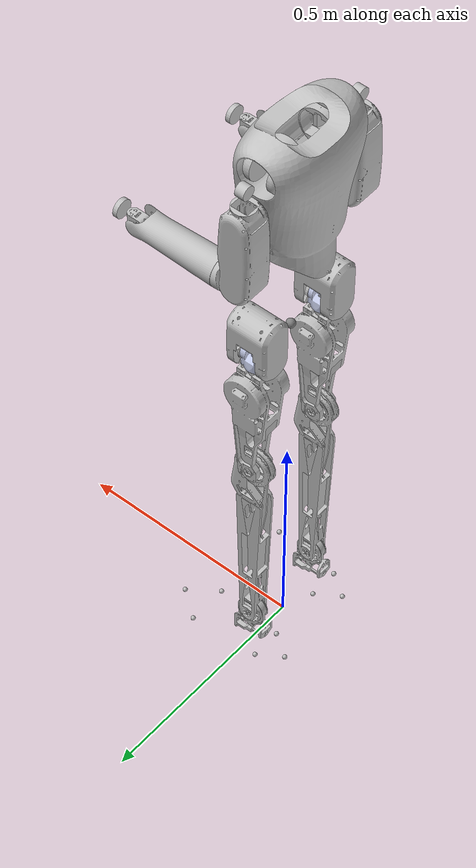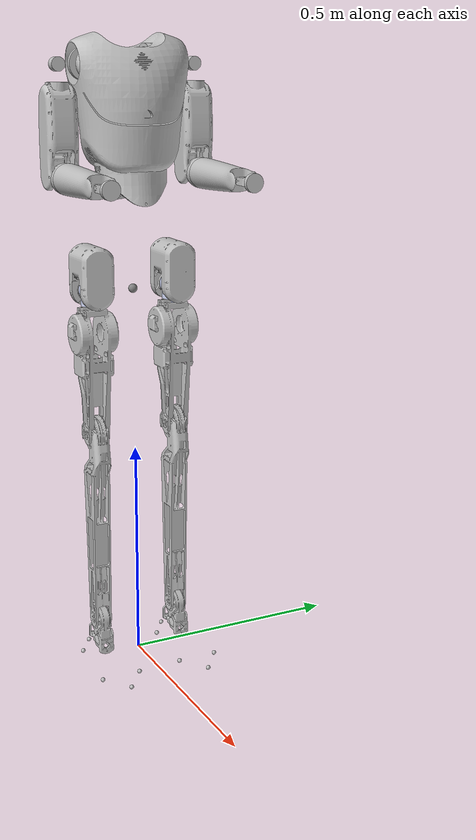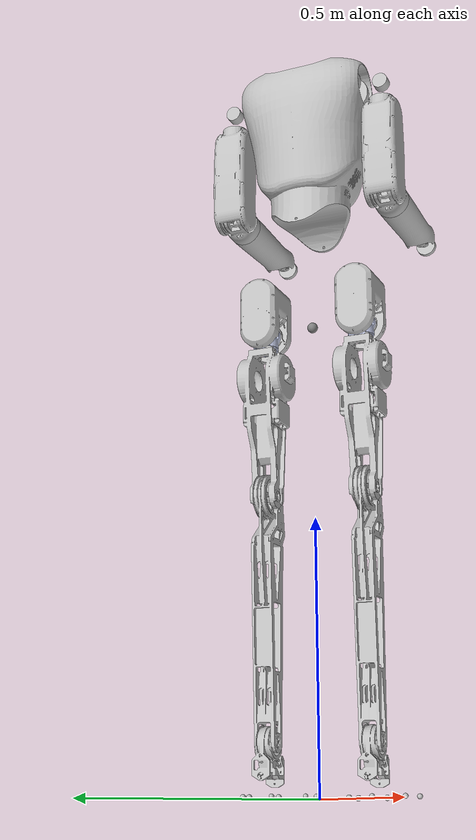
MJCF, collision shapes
<mujoco model="x3">
  <compiler angle="radian" meshdir="./meshes/"/>
  <statistic meansize="0.177939" extent="1.9618" center="0.0465088 1.93584e-06 -0.21519"/>
  <default>
    <joint damping="0.1" armature="0.01" frictionloss="0.1"/>
  </default>
  <asset>
    <texture type="skybox" builtin="gradient" width="128" height="128" rgb1="0.4 0.6 0.8" rgb2="0 0 0"/>
    <texture name="plane" type="2d" builtin="checker" rgb1="0.2 0.2 0.2" rgb2="0.3 0.3 0.3" width="512"
              height="512"/>
    <material name="plane" reflectance="0.0" texture="plane" texrepeat="1 1" texuniform="true"/>
    <mesh name="pelvis" file="pelvis.STL"/>
    <mesh name="left_hip_pitch_link" file="left_hip_pitch_link.STL"/>
    <mesh name="left_hip_roll_link" file="left_hip_roll_link.STL"/>
    <mesh name="left_hip_yaw_link" file="left_hip_yaw_link.STL"/>
    <mesh name="left_knee_link" file="left_knee_link.STL"/>
    <mesh name="left_ankle_pitch_link" file="left_ankle_pitch_link.STL"/>
    <mesh name="left_ankle_roll_link" file="left_ankle_roll_link.STL"/>
    <mesh name="right_hip_pitch_link" file="right_hip_pitch_link.STL"/>
    <mesh name="right_hip_roll_link" file="right_hip_roll_link.STL"/>
    <mesh name="right_hip_yaw_link" file="right_hip_yaw_link.STL"/>
    <mesh name="right_knee_link" file="right_knee_link.STL"/>
    <mesh name="right_ankle_pitch_link" file="right_ankle_pitch_link.STL"/>
    <mesh name="right_ankle_roll_link" file="right_ankle_roll_link.STL"/>
    <mesh name="waist_roll_link" file="waist_roll_link.STL"/>
    <mesh name="torso_link" file="torso_link.STL"/>
    <mesh name="left_shoulder_pitch_link" file="left_shoulder_pitch_link.STL"/>
    <mesh name="left_shoulder_roll_link" file="left_shoulder_roll_link.STL"/>
    <mesh name="left_shoulder_yaw_link" file="left_shoulder_yaw_link.STL"/>
    <mesh name="left_elbow_link" file="left_elbow_link.STL"/>
    <mesh name="left_wrist_roll_link" file="left_wrist_roll_link.STL"/>
    <mesh name="left_wrist_pitch_link" file="left_wrist_pitch_link.STL"/>
    <mesh name="left_wrist_yaw_link" file="left_wrist_yaw_link.STL"/>
    <mesh name="right_shoulder_pitch_link" file="right_shoulder_pitch_link.STL"/>
    <mesh name="right_shoulder_roll_link" file="right_shoulder_roll_link.STL"/>
    <mesh name="right_shoulder_yaw_link" file="right_shoulder_yaw_link.STL"/>
    <mesh name="right_elbow_link" file="right_elbow_link.STL"/>
    <mesh name="right_wrist_roll_link" file="right_wrist_roll_link.STL"/>
    <mesh name="right_wrist_pitch_link" file="right_wrist_pitch_link.STL"/>
    <mesh name="right_wrist_yaw_link" file="right_wrist_yaw_link.STL"/>
    <mesh name="imu_link" file="imu_link.STL"/>
  </asset>

  <worldbody>
    <light mode="trackcom" pos="0 0 5" dir="0 0 -1"/>
    <body name="pelvis" pos="0 0 0.918">
      <inertial pos="-1.00906e-05 1.11901e-05 0.013828" quat="0.688319 0.000592926 -7.84321e-05 0.725408" mass="3.55" diaginertia="0.0100712 0.0100075 0.00574685"/>
      <joint name="pelvis" type="free" limited="false" actuatorfrclimited="false"/>
      <!-- 关键修复3：删除重复的pelvis geom，减少计算开销 -->
      <geom  type="mesh" contype="0" conaffinity="0" group="1" density="0" rgba="0.75294 0.75294 0.75294 1" mesh="pelvis"/>
      <site name="imu_in_pelvis" size="0.01" pos="0 0 -0.045" quat="0.999992 0 -0.00412001 0"/>
      <geom type="mesh" contype="0" conaffinity="0" group="1" density="0" rgba="0.75294 0.75294 0.75294 1" pos="0 0 -0.045" quat="0.999992 0 -0.00412001 0" mesh="imu_link"/>

      <body name="left_hip_pitch_link" pos="0 0.0495 0">
        <inertial pos="0 0.0479607 0.00018619" quat="0.707096 0.00398933 -0.00398933 0.707096" mass="1.3" diaginertia="0.00327345 0.00268395 0.00219125"/>
        <joint name="left_hip_pitch_joint" pos="0 0 0" axis="0 1 0" range="-2.3562 2.3562" actuatorfrcrange="-75 75"/>
        <geom type="mesh" contype="0" conaffinity="0" group="1" density="0" rgba="0.75294 0.75294 0.75294 1" mesh="left_hip_pitch_link"/>
        <geom type="mesh" rgba="0.75294 0.75294 0.75294 1" mesh="left_hip_pitch_link"/>
        <body name="left_hip_roll_link" pos="0 0.048 -0.044">
          <inertial pos="0.00060275 0 -0.00813707" quat="0 0.591079 0 0.806614" mass="0.2" diaginertia="8.48757e-05 8.271e-05 7.40143e-05"/>
          <joint name="left_hip_roll_joint" pos="0 0 0" axis="1 0 0" range="-0.5236 1.6581" actuatorfrcrange="-40.2 40.2"/>
          <geom type="mesh" contype="0" conaffinity="0" group="1" density="0" rgba="0.79216 0.81961 0.93333 1" mesh="left_hip_roll_link"/>
          <geom type="mesh" rgba="0.79216 0.81961 0.93333 1" mesh="left_hip_roll_link"/>
          <body name="left_hip_yaw_link">
            <inertial pos="0.00076396 2.351e-05 -0.155417" quat="0.999982 0.00015287 0.00520456 -0.00309238" mass="1.9" diaginertia="0.0179598 0.0178101 0.00200581"/>
            <joint name="left_hip_yaw_joint" pos="0 0 0" axis="0 0 1" range="-1.9199 3.1416" actuatorfrcrange="-40.2 40.2"/>
            <geom type="mesh" contype="0" conaffinity="0" group="1" density="0" rgba="0.75294 0.75294 0.75294 1" mesh="left_hip_yaw_link"/>
            <geom type="mesh" rgba="0.75294 0.75294 0.75294 1" mesh="left_hip_yaw_link"/>
            <body name="left_knee_link" pos="0 0 -0.326">
              <inertial pos="0.00294272 0 -0.163752" quat="0.707079 -0.00627646 -0.00627646 0.707079" mass="0.8" diaginertia="0.0178928 0.0177353 0.000401948"/>
              <joint name="left_knee_joint" pos="0 0 0" axis="0 1 0" range="0 2.3562" actuatorfrcrange="-57.2 57.2"/>
              <geom type="mesh" contype="0" conaffinity="0" group="1" density="0" rgba="0.75294 0.75294 0.75294 1" mesh="left_knee_link"/>
              <geom type="mesh" rgba="0.75294 0.75294 0.75294 1" mesh="left_knee_link"/>
              <body name="left_ankle_pitch_link" pos="0 0 -0.45">
                <inertial pos="0.00286091 -1.418e-05 -0.0234174" quat="0.699576 0.101443 0.101254 0.700036" mass="0.2" diaginertia="0.00020422 0.000149639 8.67809e-05"/>
                <joint name="left_ankle_pitch_joint" pos="0 0 0" axis="0 1 0" range="-1.0472 1.0472" actuatorfrcrange="-39.6 39.6"/>
                <geom type="mesh" contype="0" conaffinity="0" group="1" density="0" rgba="0.75294 0.75294 0.75294 1" mesh="left_ankle_pitch_link"/>
                <geom type="mesh" rgba="0.75294 0.75294 0.75294 1" mesh="left_ankle_pitch_link"/>
                <body name="left_ankle_roll_link" pos="0 0 -0.058">
                  <inertial pos="0.0449445 4.33e-06 -0.0241154" quat="0.000465871 0.700268 0.00039967 0.713879" mass="0.6" diaginertia="0.00401447 0.00370022 0.000432073"/>
                  <joint name="left_ankle_roll_joint" pos="0 0 0" axis="1 0 0" range="-0.5236 0.5236" actuatorfrcrange="-16 16"/>
                  <geom type="mesh" contype="0" conaffinity="0" group="1" density="0" rgba="0.75294 0.75294 0.75294 1" mesh="left_ankle_roll_link"/>
                  <geom  name="left_foot1_collision" size="0.005" pos="-0.085 0 -0.036" rgba="0.75294 0.75294 0.75294 1"/>
                  <geom  name="left_foot2_collision" size="0.005" pos="-0.035 0.034 -0.036" rgba="0.75294 0.75294 0.75294 1"/>
                  <geom  name="left_foot3_collision" size="0.005" pos="-0.035 -0.034 -0.036" rgba="0.75294 0.75294 0.75294 1"/>
                  <geom  name="left_foot4_collision" size="0.005" pos="0.12 0.045 -0.036" rgba="0.75294 0.75294 0.75294 1"/>
                  <geom  name="left_foot5_collision" size="0.005" pos="0.12 -0.045 -0.036" rgba="0.75294 0.75294 0.75294 1"/>
                  <geom  name="left_foot6_collision" size="0.005" pos="0.18 0 -0.036" rgba="0.75294 0.75294 0.75294 1"/>
                </body>
              </body>
            </body>
          </body>
        </body>
      </body>
      <body name="right_hip_pitch_link" pos="0 -0.0495 0" quat="0.999992 0 -0.00411999 0">
        <inertial pos="0 -0.0479607 0.00018619" quat="0.707096 -0.00398933 0.00398933 0.707096" mass="1.3" diaginertia="0.00327345 0.00268395 0.00219125"/>
        <joint name="right_hip_pitch_joint" pos="0 0 0" axis="0 1 0" range="-2.3562 2.3562" actuatorfrcrange="-75 75"/>
        <geom type="mesh" contype="0" conaffinity="0" group="1" density="0" rgba="0.75294 0.75294 0.75294 1" mesh="right_hip_pitch_link"/>
        <geom type="mesh" rgba="0.75294 0.75294 0.75294 1" mesh="right_hip_pitch_link"/>
        <body name="right_hip_roll_link" pos="0 -0.048 -0.044">
          <inertial pos="-0.00060275 0 -0.00813707" quat="0 0.806614 0 0.591079" mass="0.2" diaginertia="8.48757e-05 8.271e-05 7.40143e-05"/>
          <joint name="right_hip_roll_joint" pos="0 0 0" axis="1 0 0" range="-1.6581 0.5236" actuatorfrcrange="-40.2 40.2"/>
          <geom type="mesh" contype="0" conaffinity="0" group="1" density="0" rgba="0.79216 0.81961 0.93333 1" mesh="right_hip_roll_link"/>
          <geom type="mesh" rgba="0.79216 0.81961 0.93333 1" mesh="right_hip_roll_link"/>
          <body name="right_hip_yaw_link">
            <inertial pos="0.00083043 -2.303e-05 -0.155417" quat="0.999989 -0.000168166 0.00472739 -9.90978e-05" mass="1.9" diaginertia="0.0179595 0.0178099 0.00200591"/>
            <joint name="right_hip_yaw_joint" pos="0 0 0" axis="0 0 1" range="-3.1416 1.9199" actuatorfrcrange="-40.2 40.2"/>
            <geom type="mesh" contype="0" conaffinity="0" group="1" density="0" rgba="0.75294 0.75294 0.75294 1" mesh="right_hip_yaw_link"/>
            <geom type="mesh" rgba="0.75294 0.75294 0.75294 1" mesh="right_hip_yaw_link"/>
            <body name="right_knee_link" pos="0 0 -0.326">
              <inertial pos="0.0029419 6.85e-06 -0.164013" quat="0.706971 -0.00632247 -0.00625627 0.707187" mass="0.8" diaginertia="0.0178869 0.0177291 0.000401547"/>
              <joint name="right_knee_joint" pos="0 0 0" axis="0 1 0" range="0 2.3562" actuatorfrcrange="-57.2 57.2"/>
              <geom type="mesh" contype="0" conaffinity="0" group="1" density="0" rgba="0.75294 0.75294 0.75294 1" mesh="right_knee_link"/>
              <geom type="mesh" rgba="0.75294 0.75294 0.75294 1" mesh="right_knee_link"/>
              <body name="right_ankle_pitch_link" pos="0 0 -0.45">
                <inertial pos="0.00286091 -1.418e-05 -0.0234174" quat="0.699576 0.101443 0.101254 0.700036" mass="0.2" diaginertia="0.00020422 0.000149639 8.67809e-05"/>
                <joint name="right_ankle_pitch_joint" pos="0 0 0" axis="0 1 0" range="-1.0472 1.0472" actuatorfrcrange="-39.6 39.6"/>
                <geom type="mesh" contype="0" conaffinity="0" group="1" density="0" rgba="0.75294 0.75294 0.75294 1" mesh="right_ankle_pitch_link"/>
                <geom type="mesh" rgba="0.75294 0.75294 0.75294 1" mesh="right_ankle_pitch_link"/>
                <body name="right_ankle_roll_link" pos="0 0 -0.058">
                  <inertial pos="0.0449445 4.33e-06 -0.0241154" quat="0.000465871 0.700268 0.00039967 0.713879" mass="0.6" diaginertia="0.00401447 0.00370022 0.000432073"/>
                  <joint name="right_ankle_roll_joint" pos="0 0 0" axis="1 0 0" range="-0.5236 0.5236" actuatorfrcrange="-16 16"/>
                  <geom type="mesh" contype="0" conaffinity="0" group="1" density="0" rgba="0.75294 0.75294 0.75294 1" mesh="right_ankle_roll_link"/>
                  <geom name="right_foot1_collision" size="0.005" pos="-0.085 0 -0.036" rgba="0.75294 0.75294 0.75294 1"/>
                  <geom name="right_foot2_collision" size="0.005" pos="-0.035 0.034 -0.036" rgba="0.75294 0.75294 0.75294 1"/>
                  <geom name="right_foot3_collision" size="0.005" pos="-0.035 -0.034 -0.036" rgba="0.75294 0.75294 0.75294 1"/>
                  <geom name="right_foot4_collision" size="0.005" pos="0.12 0.045 -0.036" rgba="0.75294 0.75294 0.75294 1"/>
                  <geom name="right_foot5_collision" size="0.005" pos="0.12 -0.045 -0.036" rgba="0.75294 0.75294 0.75294 1"/>
                  <geom name="right_foot6_collision" size="0.005" pos="0.18 0 -0.036" rgba="0.75294 0.75294 0.75294 1"/>
                </body>
              </body>
            </body>
          </body>
        </body>
      </body>
      <body name="waist_roll_link" pos="0 0 0.1505">
        <inertial pos="-0.00060275 0 0.00813707" quat="0 0.592137 0 0.805837" mass="0.2" diaginertia="8.49667e-05 8.271e-05 7.40233e-05"/>
        <joint name="waist_roll_joint" pos="0 0 0" axis="1 0 0" range="-0.3491 0.3491" actuatorfrcrange="-40.2 40.2"/>
        <geom type="mesh" contype="0" conaffinity="0" group="1" density="0" rgba="0.79216 0.81961 0.93333 1" mesh="waist_roll_link"/>
        <body name="torso_link">
          <inertial pos="-0.00441482 -4.305e-05 0.155364" quat="0.704735 0.0326523 0.0328926 0.707955" mass="4.2" diaginertia="0.0300747 0.0285065 0.00964504"/>
          <joint name="waist_yaw_joint" pos="0 0 0" axis="0 0 1" range="-1.8326 1.8326" actuatorfrcrange="-40.2 40.2"/>
          <geom type="mesh" contype="0" conaffinity="0" group="1" density="0" rgba="0.75294 0.75294 0.75294 1" mesh="torso_link"/>
          <geom type="mesh" rgba="0.75294 0.75294 0.75294 1" mesh="torso_link"/>
          <body name="left_shoulder_pitch_link" pos="-0.015 0.0535 0.2885">
            <inertial pos="0 0.0432043 -5.008e-05" quat="0.703452 0.710743 0 0" mass="1" diaginertia="0.001679 0.00162637 0.0010377"/>
            <joint name="left_shoulder_pitch_joint" pos="0 0 0" axis="0 1 0" range="-3.1416 1.5708" actuatorfrcrange="-50 50"/>
            <geom type="mesh" contype="0" conaffinity="0" group="1" density="0" rgba="0.75294 0.75294 0.75294 1" mesh="left_shoulder_pitch_link"/>
            <geom type="mesh" rgba="0.75294 0.75294 0.75294 1" mesh="left_shoulder_pitch_link"/>
            <body name="left_shoulder_roll_link" pos="0 0.10405 0">
              <inertial pos="0 0 -0.00344765" quat="0 0.707107 0 0.707107" mass="0.2" diaginertia="6.723e-05 5.419e-05 5.033e-05"/>
              <joint name="left_shoulder_roll_joint" pos="0 0 0" axis="1 0 0" range="0 3.0543" actuatorfrcrange="-22.6 22.6"/>
              <geom type="mesh" contype="0" conaffinity="0" group="1" density="0" rgba="0.75294 0.75294 0.75294 1" mesh="left_shoulder_roll_link"/>
              <geom type="mesh" rgba="0.75294 0.75294 0.75294 1" mesh="left_shoulder_roll_link"/>
              <body name="left_shoulder_yaw_link">
                <inertial pos="-0.00163308 3.152e-05 -0.147711" quat="0.712005 -0.00525884 -0.0132953 0.702029" mass="1.8" diaginertia="0.00927938 0.00910639 0.00117262"/>
                <joint name="left_shoulder_yaw_joint" pos="0 0 0" axis="0 0 1" range="-2.0071 2.0071" actuatorfrcrange="-22.6 22.6"/>
                <geom type="mesh" contype="0" conaffinity="0" group="1" density="0" rgba="0.75294 0.75294 0.75294 1" mesh="left_shoulder_yaw_link"/>
                <geom type="mesh" rgba="0.75294 0.75294 0.75294 1" mesh="left_shoulder_yaw_link"/>
                <body name="left_elbow_link" pos="0 0 -0.234">
                  <inertial pos="0.00672647 0.00015498 0" quat="0.999115 0 0 0.042057" mass="0.2" diaginertia="6.79557e-05 6.00743e-05 5.928e-05"/>
                  <joint name="left_elbow_joint" pos="0 0 0" axis="0 1 0" range="-0.4363 1.5708" actuatorfrcrange="-18.8 18.8"/>
                  <geom type="mesh" contype="0" conaffinity="0" group="1" density="0" rgba="0.75294 0.75294 0.75294 1" mesh="left_elbow_link"/>
                  <geom type="mesh" rgba="0.75294 0.75294 0.75294 1" mesh="left_elbow_link"/>
                  <body name="left_wrist_roll_link">
                    <inertial pos="0.103161 -0.00013771 -3.645e-05" quat="0.498466 0.498881 0.501814 0.500831" mass="0.8" diaginertia="0.00170313 0.00164865 0.000204195"/>
                    <joint name="left_wrist_roll_joint" pos="0 0 0" axis="1 0 0" range="-2.0071 2.0071" actuatorfrcrange="-18.8 18.8"/>
                    <geom type="mesh" contype="0" conaffinity="0" group="1" density="0" rgba="0.75294 0.75294 0.75294 1" mesh="left_wrist_roll_link"/>
                    <geom type="mesh" rgba="0.75294 0.75294 0.75294 1" mesh="left_wrist_roll_link"/>
                    <body name="left_wrist_pitch_link" pos="0.235 0 0">
                      <inertial pos="0 0 0" quat="0.707107 0.707107 0 0" mass="0.1" diaginertia="4.138e-05 4.138e-05 1.104e-05"/>
                      <joint name="left_wrist_pitch_joint" pos="0 0 0" axis="0 1 0" range="-0.6981 0.6981" actuatorfrcrange="-2.8 2.8"/>
                      <geom type="mesh" contype="0" conaffinity="0" group="1" density="0" rgba="0.75294 0.75294 0.75294 1" mesh="left_wrist_pitch_link"/>
                      <geom type="mesh" rgba="0.75294 0.75294 0.75294 1" mesh="left_wrist_pitch_link"/>
                      <body name="left_wrist_yaw_link" pos="0.0215 0 0">
                        <inertial pos="0.0147262 0 -0.00097059" quat="0 0.859971 0 0.510344" mass="0.1" diaginertia="3.36436e-05 3.303e-05 2.77464e-05"/>
                        <joint name="left_wrist_yaw_joint" pos="0 0 0" axis="0 0 1" range="-0.8727 0.8727" actuatorfrcrange="-3.4 3.4"/>
                        <geom type="mesh" contype="0" conaffinity="0" group="1" density="0" rgba="0.75294 0.75294 0.75294 1" mesh="left_wrist_yaw_link"/>
                        <geom size="0.02 0.005" pos="0.028 0 0" quat="0.707105 0 0.707108 0" type="cylinder" rgba="0.75294 0.75294 0.75294 1"/>
                      </body>
                    </body>
                  </body>
                </body>
              </body>
            </body>
          </body>
          <body name="right_shoulder_pitch_link" pos="-0.015 -0.0535 0.2885">
            <inertial pos="0 -0.0426543 -5.008e-05" quat="0.710743 0.703452 0 0" mass="1" diaginertia="0.001679 0.00162637 0.0010377"/>
            <joint name="right_shoulder_pitch_joint" pos="0 0 0" axis="0 1 0" range="-3.1416 1.5708" actuatorfrcrange="-50 50"/>
            <geom type="mesh" contype="0" conaffinity="0" group="1" density="0" rgba="0.75294 0.75294 0.75294 1" mesh="right_shoulder_pitch_link"/>
            <geom type="mesh" rgba="0.75294 0.75294 0.75294 1" mesh="right_shoulder_pitch_link"/>
            <body name="right_shoulder_roll_link" pos="0 -0.1035 0">
              <inertial pos="-0.00015498 0 -0.00672647" quat="0.520586 0.520586 -0.478529 0.478529" mass="0.2" diaginertia="6.79557e-05 6.00743e-05 5.928e-05"/>
              <joint name="right_shoulder_roll_joint" pos="0 0 0" axis="1 0 0" range="-3.0543 0" actuatorfrcrange="-22.6 22.6"/>
              <geom type="mesh" contype="0" conaffinity="0" group="1" density="0" rgba="0.75294 0.75294 0.75294 1" mesh="right_shoulder_roll_link"/>
              <geom type="mesh" rgba="0.75294 0.75294 0.75294 1" mesh="right_shoulder_roll_link"/>
              <body name="right_shoulder_yaw_link">
                <inertial pos="-0.00163308 3.152e-05 -0.147711" quat="0.712005 -0.00525884 -0.0132953 0.702029" mass="1.8" diaginertia="0.00927938 0.00910639 0.00117262"/>
                <joint name="right_shoulder_yaw_joint" pos="0 0 0" axis="0 0 1" range="-2.0071 2.0071" actuatorfrcrange="-22.6 22.6"/>
                <geom type="mesh" contype="0" conaffinity="0" group="1" density="0" rgba="0.75294 0.75294 0.75294 1" mesh="right_shoulder_yaw_link"/>
                <geom type="mesh" rgba="0.75294 0.75294 0.75294 1" mesh="right_shoulder_yaw_link"/>
                <body name="right_elbow_link" pos="0 0 -0.234">
                  <inertial pos="0.00672647 0.00015498 0" quat="0.999115 0 0 0.042057" mass="0.2" diaginertia="6.79557e-05 6.00743e-05 5.928e-05"/>
                  <joint name="right_elbow_joint" pos="0 0 0" axis="0 1 0" range="-0.4363 1.5708" actuatorfrcrange="-18.8 18.8"/>
                  <geom type="mesh" contype="0" conaffinity="0" group="1" density="0" rgba="0.75294 0.75294 0.75294 1" mesh="right_elbow_link"/>
                  <geom type="mesh" rgba="0.75294 0.75294 0.75294 1" mesh="right_elbow_link"/>
                  <body name="right_wrist_roll_link">
                    <inertial pos="0.103161 -0.00013771 -3.645e-05" quat="0.498466 0.498881 0.501814 0.500831" mass="0.8" diaginertia="0.00170313 0.00164865 0.000204195"/>
                    <joint name="right_wrist_roll_joint" pos="0 0 0" axis="1 0 0" range="-2.0071 2.0071" actuatorfrcrange="-18.8 18.8"/>
                    <geom type="mesh" contype="0" conaffinity="0" group="1" density="0" rgba="0.75294 0.75294 0.75294 1" mesh="right_wrist_roll_link"/>
                    <geom type="mesh" rgba="0.75294 0.75294 0.75294 1" mesh="right_wrist_roll_link"/>
                    <body name="right_wrist_pitch_link" pos="0.235 0 0">
                      <inertial pos="0 0 0" quat="0.707107 0.707107 0 0" mass="0.1" diaginertia="4.138e-05 4.138e-05 1.104e-05"/>
                      <joint name="right_wrist_pitch_joint" pos="0 0 0" axis="0 1 0" range="-0.6981 0.6981" actuatorfrcrange="-2.8 2.8"/>
                      <geom type="mesh" contype="0" conaffinity="0" group="1" density="0" rgba="0.75294 0.75294 0.75294 1" mesh="right_wrist_pitch_link"/>
                      <geom type="mesh" rgba="0.75294 0.75294 0.75294 1" mesh="right_wrist_pitch_link"/>
                      <body name="right_wrist_yaw_link" pos="0.0215 0 0">
                        <inertial pos="0.0147262 0 -0.00097059" quat="0 0.859971 0 0.510344" mass="0.1" diaginertia="3.36436e-05 3.303e-05 2.77464e-05"/>
                        <joint name="right_wrist_yaw_joint" pos="0 0 0" axis="0 0 1" range="-0.8727 0.8727" actuatorfrcrange="-3.4 3.4"/>
                        <geom type="mesh" contype="0" conaffinity="0" group="1" density="0" rgba="0.75294 0.75294 0.75294 1" mesh="right_wrist_yaw_link"/>
                        <geom size="0.02 0.005" pos="0.028 0 0" quat="0.707105 0 0.707108 0" type="cylinder" rgba="0.75294 0.75294 0.75294 1"/>
                      </body>
                    </body>
                  </body>
                </body>
              </body>
            </body>
          </body>
        </body>
      </body>
    </body>
  </worldbody>

  <actuator>
  </actuator>
  <sensor>
    <gyro name="imu_ang_vel" site="imu_in_pelvis"/>
    <velocimeter name="imu_lin_vel" site="imu_in_pelvis"/>
    <accelerometer name="imu_lin_acc" site="imu_in_pelvis"/>
    <subtreeangmom name="root_angmom" body="pelvis"/>
  </sensor>

</mujoco>
